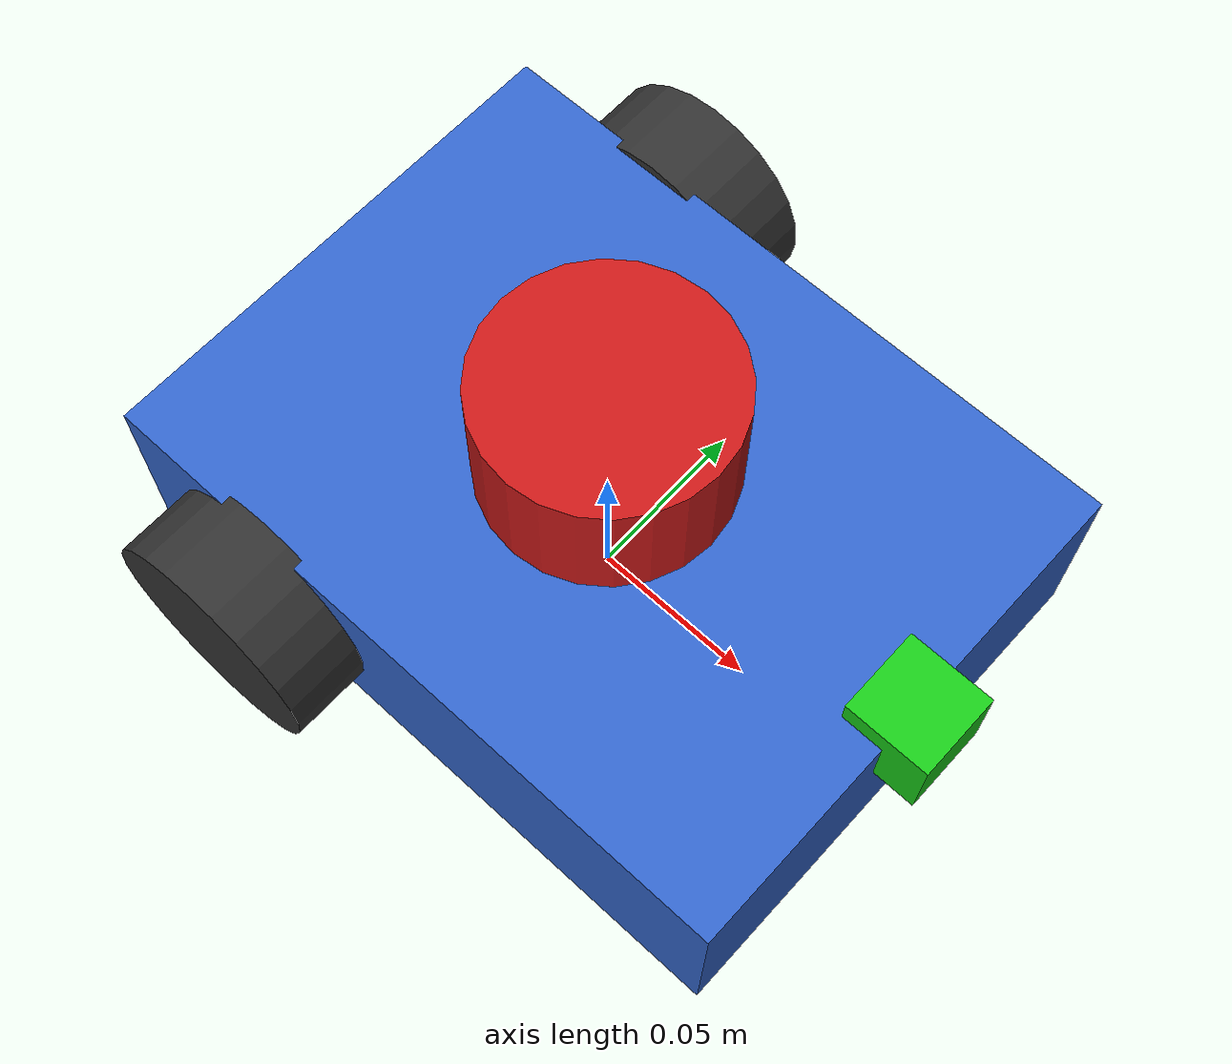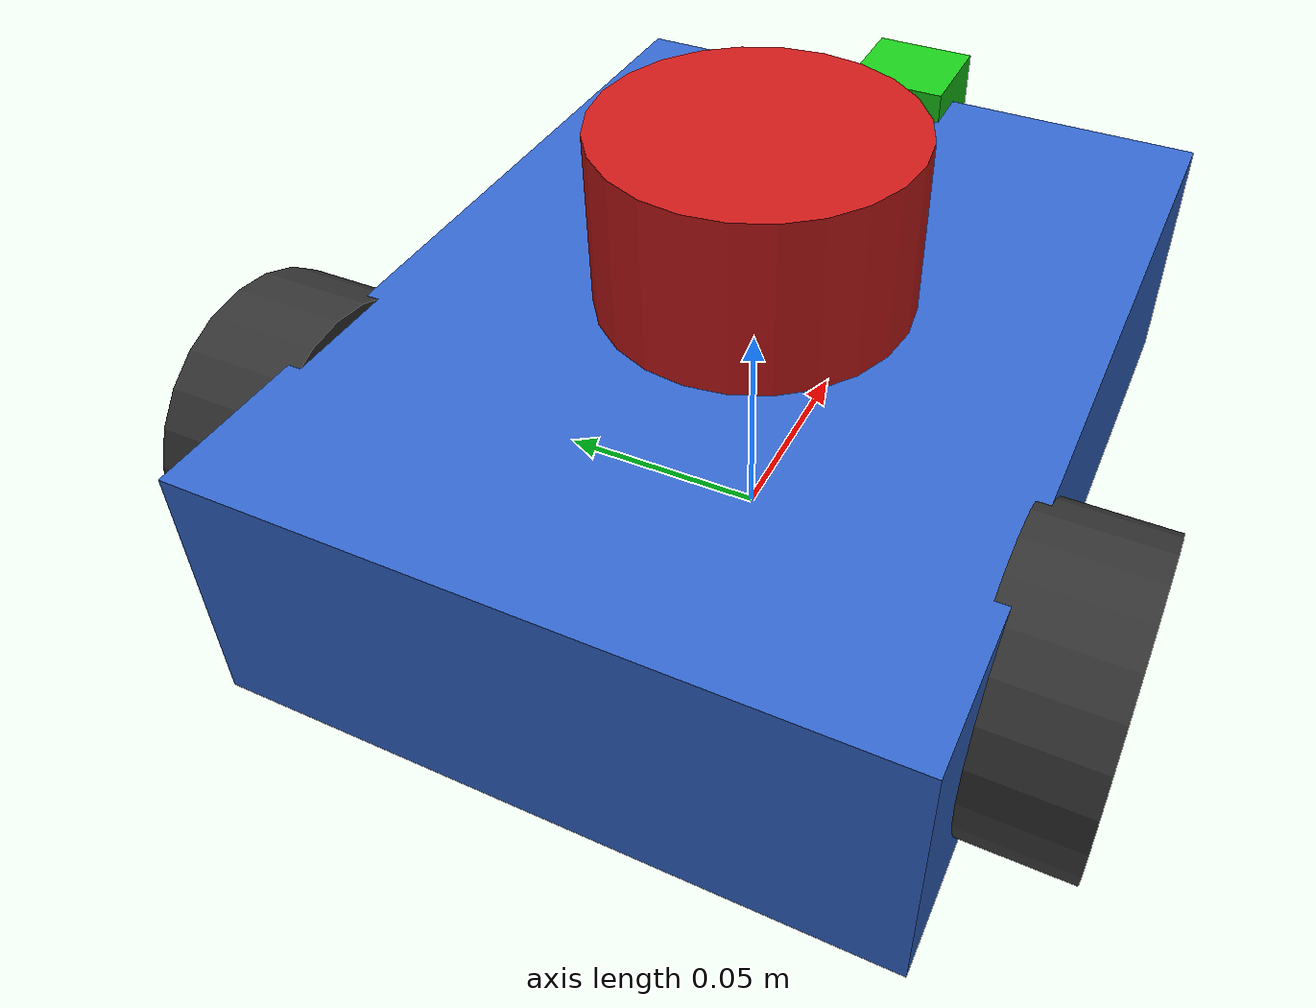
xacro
<?xml version="1.0"?>
<robot xmlns:xacro="http://www.ros.org/wiki/xacro" name="slam_tracking_car">

  <!-- ── Properties ─────────────────────────────────────────── -->
  <xacro:property name="chassis_length" value="0.20"/>
  <xacro:property name="chassis_width" value="0.15"/>
  <xacro:property name="chassis_height" value="0.06"/>
  <xacro:property name="chassis_mass" value="1.0"/>

  <xacro:property name="wheel_radius" value="0.033"/>
  <xacro:property name="wheel_width" value="0.026"/>
  <xacro:property name="wheel_mass" value="0.1"/>
  <xacro:property name="wheel_separation" value="0.17"/>

  <xacro:property name="caster_radius" value="0.015"/>
  <xacro:property name="caster_mass" value="0.05"/>

  <xacro:property name="lidar_height" value="0.04"/>
  <xacro:property name="lidar_radius" value="0.035"/>
  <xacro:property name="lidar_mass" value="0.15"/>

  <xacro:property name="camera_size" value="0.025"/>
  <xacro:property name="camera_mass" value="0.01"/>

  <!-- ── Inertia macros ─────────────────────────────────────── -->
  <xacro:macro name="box_inertia" params="m x y z">
    <inertial>
      <mass value="${m}"/>
      <inertia ixx="${m*(y*y+z*z)/12}" ixy="0" ixz="0"
               iyy="${m*(x*x+z*z)/12}" iyz="0"
               izz="${m*(x*x+y*y)/12}"/>
    </inertial>
  </xacro:macro>

  <xacro:macro name="cylinder_inertia" params="m r h">
    <inertial>
      <mass value="${m}"/>
      <inertia ixx="${m*(3*r*r+h*h)/12}" ixy="0" ixz="0"
               iyy="${m*(3*r*r+h*h)/12}" iyz="0"
               izz="${m*r*r/2}"/>
    </inertial>
  </xacro:macro>

  <xacro:macro name="sphere_inertia" params="m r">
    <inertial>
      <mass value="${m}"/>
      <inertia ixx="${2*m*r*r/5}" ixy="0" ixz="0"
               iyy="${2*m*r*r/5}" iyz="0"
               izz="${2*m*r*r/5}"/>
    </inertial>
  </xacro:macro>

  <!-- ── Base footprint (ground projection) ─────────────────── -->
  <link name="base_footprint"/>

  <joint name="base_joint" type="fixed">
    <parent link="base_footprint"/>
    <child link="base_link"/>
    <origin xyz="0 0 ${wheel_radius}" rpy="0 0 0"/>
  </joint>

  <!-- ── Chassis ────────────────────────────────────────────── -->
  <link name="base_link">
    <visual>
      <geometry>
        <box size="${chassis_length} ${chassis_width} ${chassis_height}"/>
      </geometry>
      <material name="blue">
        <color rgba="0.2 0.4 0.8 1.0"/>
      </material>
    </visual>
    <collision>
      <geometry>
        <box size="${chassis_length} ${chassis_width} ${chassis_height}"/>
      </geometry>
    </collision>
    <xacro:box_inertia m="${chassis_mass}" x="${chassis_length}" y="${chassis_width}" z="${chassis_height}"/>
  </link>

  <!-- ── Wheel macro ────────────────────────────────────────── -->
  <xacro:macro name="wheel" params="prefix y_offset">
    <link name="${prefix}_wheel">
      <visual>
        <geometry>
          <cylinder radius="${wheel_radius}" length="${wheel_width}"/>
        </geometry>
        <material name="dark_gray">
          <color rgba="0.2 0.2 0.2 1.0"/>
        </material>
      </visual>
      <collision>
        <geometry>
          <cylinder radius="${wheel_radius}" length="${wheel_width}"/>
        </geometry>
      </collision>
      <xacro:cylinder_inertia m="${wheel_mass}" r="${wheel_radius}" h="${wheel_width}"/>
    </link>

    <joint name="${prefix}_wheel_joint" type="continuous">
      <parent link="base_link"/>
      <child link="${prefix}_wheel"/>
      <origin xyz="${-chassis_length/4} ${y_offset} 0" rpy="${-pi/2} 0 0"/>
      <axis xyz="0 0 1"/>
      <dynamics damping="0.01" friction="0.1"/>
    </joint>
  </xacro:macro>

  <xacro:wheel prefix="left" y_offset="${wheel_separation/2}"/>
  <xacro:wheel prefix="right" y_offset="${-wheel_separation/2}"/>

  <!-- ── Front caster ───────────────────────────────────────── -->
  <link name="caster_wheel">
    <visual>
      <geometry>
        <sphere radius="${caster_radius}"/>
      </geometry>
      <material name="gray">
        <color rgba="0.5 0.5 0.5 1.0"/>
      </material>
    </visual>
    <collision>
      <geometry>
        <sphere radius="${caster_radius}"/>
      </geometry>
    </collision>
    <xacro:sphere_inertia m="${caster_mass}" r="${caster_radius}"/>
  </link>

  <joint name="caster_joint" type="fixed">
    <parent link="base_link"/>
    <child link="caster_wheel"/>
    <origin xyz="${chassis_length/3} 0 ${-(wheel_radius - caster_radius)}" rpy="0 0 0"/>
  </joint>

  <!-- ── LiDAR (LDS02RR) ───────────────────────────────────── -->
  <link name="laser_link">
    <visual>
      <geometry>
        <cylinder radius="${lidar_radius}" length="${lidar_height}"/>
      </geometry>
      <material name="red">
        <color rgba="0.8 0.1 0.1 1.0"/>
      </material>
    </visual>
    <collision>
      <geometry>
        <cylinder radius="${lidar_radius}" length="${lidar_height}"/>
      </geometry>
    </collision>
    <xacro:cylinder_inertia m="${lidar_mass}" r="${lidar_radius}" h="${lidar_height}"/>
  </link>

  <joint name="lidar_joint" type="fixed">
    <parent link="base_link"/>
    <child link="laser_link"/>
    <origin xyz="0 0 ${chassis_height/2 + lidar_height/2}" rpy="0 0 0"/>
  </joint>

  <!-- ── IMU (MPU6050) ─────────────────────────────────────── -->
  <link name="imu_link"/>
  <joint name="imu_joint" type="fixed">
    <parent link="base_link"/>
    <child link="imu_link"/>
    <origin xyz="0 0 ${chassis_height/2}" rpy="0 0 0"/>
  </joint>

  <!-- ── Pan Camera Mount (ESP32-CAM) ─────────────────────────── -->
  <!-- Pan link (rotates around Z axis) -->
  <!-- Note: Tilt servo removed per design decision (pan-only tracking) -->
  <link name="pan_link">
    <visual>
      <geometry>
        <cylinder radius="0.01" length="0.02"/>
      </geometry>
      <material name="gray">
        <color rgba="0.5 0.5 0.5 1.0"/>
      </material>
    </visual>
    <inertial>
      <mass value="0.02"/>
      <inertia ixx="0.000001" ixy="0" ixz="0" iyy="0.000001" iyz="0" izz="0.000001"/>
    </inertial>
  </link>

  <joint name="camera_pan_joint" type="revolute">
    <parent link="base_link"/>
    <child link="pan_link"/>
    <origin xyz="${chassis_length/2} 0 ${chassis_height/4}" rpy="0 0 0"/>
    <axis xyz="0 0 1"/>
    <limit lower="${-pi/2}" upper="${pi/2}" effort="1.0" velocity="2.0"/>
    <dynamics damping="0.01" friction="0.1"/>
  </joint>

  <!-- Camera link (attached directly to pan link — no tilt) -->
  <link name="camera_link">
    <visual>
      <geometry>
        <box size="${camera_size} ${camera_size} ${camera_size}"/>
      </geometry>
      <material name="green">
        <color rgba="0.1 0.8 0.1 1.0"/>
      </material>
    </visual>
    <collision>
      <geometry>
        <box size="${camera_size} ${camera_size} ${camera_size}"/>
      </geometry>
    </collision>
    <xacro:box_inertia m="${camera_mass}" x="${camera_size}" y="${camera_size}" z="${camera_size}"/>
  </link>

  <joint name="camera_mount_joint" type="fixed">
    <parent link="pan_link"/>
    <child link="camera_link"/>
    <origin xyz="0 0 0.01" rpy="0 0 0"/>
  </joint>

  <!-- Camera optical frame (Z forward, X right, Y down — ROS convention) -->
  <link name="camera_optical_frame"/>
  <joint name="camera_optical_joint" type="fixed">
    <parent link="camera_link"/>
    <child link="camera_optical_frame"/>
    <origin xyz="0 0 0" rpy="${-pi/2} 0 ${-pi/2}"/>
  </joint>

  <!-- ── Gazebo plugins (loaded conditionally) ──────────────── -->
  <xacro:include filename="$(find slam_car_bringup)/urdf/gazebo_plugins.xacro"/>

</robot>
